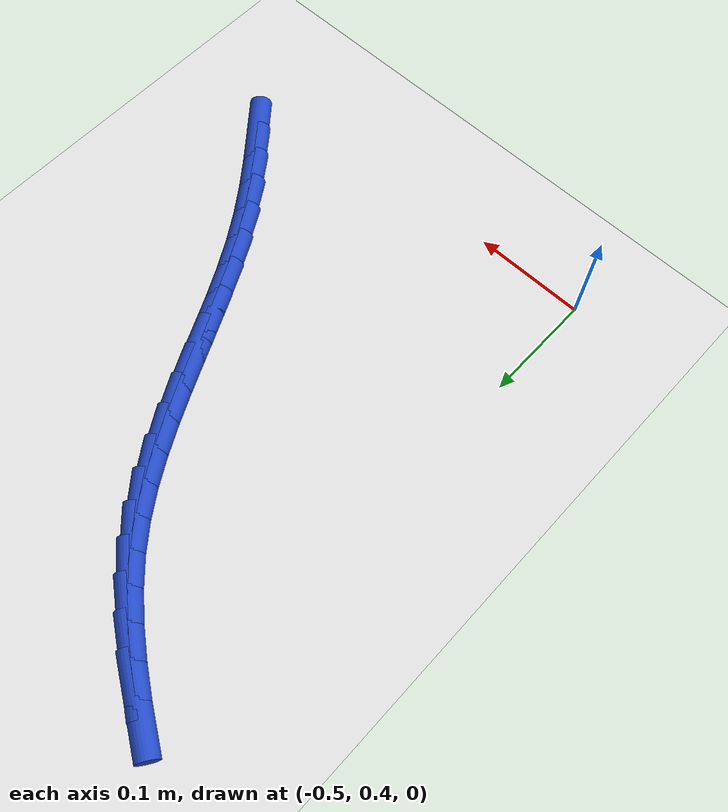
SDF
<sdf version="1.6">
 <world name="default">
  <model name="ground_plane">
   <static>1</static>
   <link name="link">
    <collision name="collision">
     <geometry><plane><normal>0 0 1</normal><size>100 100</size></plane></geometry>
     <surface><friction><ode><mu>100</mu><mu2>50</mu2></ode></friction></surface>
    </collision>
    <visual name="visual">
     <cast_shadows>0</cast_shadows>
     <geometry><plane><normal>0 0 1</normal><size>100 100</size></plane></geometry>
     <material>
      <script><uri>file://media/materials/scripts/gazebo.material</uri><name>Gazebo/WhiteGlow</name></script>
     </material>
    </visual>
   </link>
  </model>
  <model name="line">
   <link name="link_18">
    <pose>-0.1799338295573275 0.46100271826824607 0.01 0 1.57 -0.8775200405199837</pose>
    <collision name="collision">
     <geometry><cylinder><radius>0.01</radius><length>0.08</length></cylinder></geometry>
    </collision>
    <visual name="visual">
     <material>
      <script><name>Gazebo/Blue</name><uri>file://media/materials/scripts/gazebo.material</uri></script>
     </material>
     <geometry><cylinder><radius>0.01</radius><length>0.08</length></cylinder></geometry>
    </visual>
   </link>
   <link name="link_19">
    <pose>-0.1985180115336771 0.4833701477216604 0.01 0 1.57 -0.9076043102871109</pose>
    <collision name="collision">
     <geometry><cylinder><radius>0.01</radius><length>0.08</length></cylinder></geometry>
    </collision>
    <visual name="visual">
     <material>
      <script><name>Gazebo/Blue</name><uri>file://media/materials/scripts/gazebo.material</uri></script>
     </material>
     <geometry><cylinder><radius>0.01</radius><length>0.08</length></cylinder></geometry>
    </visual>
   </link>
   <link name="link_20">
    <pose>-0.21641313898775894 0.5062764291059282 0.01 0 1.57 -0.9494937242142367</pose>
    <collision name="collision">
     <geometry><cylinder><radius>0.01</radius><length>0.08</length></cylinder></geometry>
    </collision>
    <visual name="visual">
     <material>
      <script><name>Gazebo/Blue</name><uri>file://media/materials/scripts/gazebo.material</uri></script>
     </material>
     <geometry><cylinder><radius>0.01</radius><length>0.08</length></cylinder></geometry>
    </visual>
   </link>
   <link name="link_21">
    <pose>-0.2333200111365732 0.5298934251563915 0.01 0 1.57 -1.0025591956574016</pose>
    <collision name="collision">
     <geometry><cylinder><radius>0.01</radius><length>0.08</length></cylinder></geometry>
    </collision>
    <visual name="visual">
     <material>
      <script><name>Gazebo/Blue</name><uri>file://media/materials/scripts/gazebo.material</uri></script>
     </material>
     <geometry><cylinder><radius>0.01</radius><length>0.08</length></cylinder></geometry>
    </visual>
   </link>
   <link name="link_22">
    <pose>-0.24895544499840927 0.5543817886077085 0.01 0 1.57 -1.0536971307739194</pose>
    <collision name="collision">
     <geometry><cylinder><radius>0.01</radius><length>0.08</length></cylinder></geometry>
    </collision>
    <visual name="visual">
     <material>
      <script><name>Gazebo/Blue</name><uri>file://media/materials/scripts/gazebo.material</uri></script>
     </material>
     <geometry><cylinder><radius>0.01</radius><length>0.08</length></cylinder></geometry>
    </visual>
   </link>
   <link name="link_23">
    <pose>-0.26334601776941585 0.5796853876469604 0.01 0 1.57 -1.0912162326517247</pose>
    <collision name="collision">
     <geometry><cylinder><radius>0.01</radius><length>0.08</length></cylinder></geometry>
    </collision>
    <visual name="visual">
     <material>
      <script><name>Gazebo/Blue</name><uri>file://media/materials/scripts/gazebo.material</uri></script>
     </material>
     <geometry><cylinder><radius>0.01</radius><length>0.08</length></cylinder></geometry>
    </visual>
   </link>
   <link name="link_24">
    <pose>-0.27679861239916026 0.6055519194867726 0.01 0 1.57 -1.1149260319576053</pose>
    <collision name="collision">
     <geometry><cylinder><radius>0.01</radius><length>0.08</length></cylinder></geometry>
    </collision>
    <visual name="visual">
     <material>
      <script><name>Gazebo/Blue</name><uri>file://media/materials/scripts/gazebo.material</uri></script>
     </material>
     <geometry><cylinder><radius>0.01</radius><length>0.08</length></cylinder></geometry>
    </visual>
   </link>
   <link name="link_25">
    <pose>-0.2896302203112472 0.6317220069605334 0.01 0 1.57 -1.1249902588702205</pose>
    <collision name="collision">
     <geometry><cylinder><radius>0.01</radius><length>0.08</length></cylinder></geometry>
    </collision>
    <visual name="visual">
     <material>
      <script><name>Gazebo/Blue</name><uri>file://media/materials/scripts/gazebo.material</uri></script>
     </material>
     <geometry><cylinder><radius>0.01</radius><length>0.08</length></cylinder></geometry>
    </visual>
   </link>
   <link name="link_26">
    <pose>-0.30215783292928067 0.657936272901631 0.01 0 1.57 -1.1213694451881586</pose>
    <collision name="collision">
     <geometry><cylinder><radius>0.01</radius><length>0.08</length></cylinder></geometry>
    </collision>
    <visual name="visual">
     <material>
      <script><name>Gazebo/Blue</name><uri>file://media/materials/scripts/gazebo.material</uri></script>
     </material>
     <geometry><cylinder><radius>0.01</radius><length>0.08</length></cylinder></geometry>
    </visual>
   </link>
   <link name="link_27">
    <pose>-0.3146984416768654 0.683935340143454 0.01 0 1.57 -1.1037585140640633</pose>
    <collision name="collision">
     <geometry><cylinder><radius>0.01</radius><length>0.08</length></cylinder></geometry>
    </collision>
    <visual name="visual">
     <material>
      <script><name>Gazebo/Blue</name><uri>file://media/materials/scripts/gazebo.material</uri></script>
     </material>
     <geometry><cylinder><radius>0.01</radius><length>0.08</length></cylinder></geometry>
    </visual>
   </link>
   <link name="link_28">
    <pose>-0.3275690379776056 0.7094598315193907 0.01 0 1.57 -1.0715906503778565</pose>
    <collision name="collision">
     <geometry><cylinder><radius>0.01</radius><length>0.08</length></cylinder></geometry>
    </collision>
    <visual name="visual">
     <material>
      <script><name>Gazebo/Blue</name><uri>file://media/materials/scripts/gazebo.material</uri></script>
     </material>
     <geometry><cylinder><radius>0.01</radius><length>0.08</length></cylinder></geometry>
    </visual>
   </link>
   <link name="link_29">
    <pose>-0.3410866132551055 0.7342503698628288 0.01 0 1.57 -1.0241212920625875</pose>
    <collision name="collision">
     <geometry><cylinder><radius>0.01</radius><length>0.08</length></cylinder></geometry>
    </collision>
    <visual name="visual">
     <material>
      <script><name>Gazebo/Blue</name><uri>file://media/materials/scripts/gazebo.material</uri></script>
     </material>
     <geometry><cylinder><radius>0.01</radius><length>0.08</length></cylinder></geometry>
    </visual>
   </link>
   <link name="link_30">
    <pose>-0.3555681589329697 0.7580475780071572 0.01 0 1.57 -0.9606255741254276</pose>
    <collision name="collision">
     <geometry><cylinder><radius>0.01</radius><length>0.08</length></cylinder></geometry>
    </collision>
    <visual name="visual">
     <material>
      <script><name>Gazebo/Blue</name><uri>file://media/materials/scripts/gazebo.material</uri></script>
     </material>
     <geometry><cylinder><radius>0.01</radius><length>0.08</length></cylinder></geometry>
    </visual>
   </link>
   <link name="link_31">
    <pose>-0.3713306664348027 0.7805920787857641 0.01 0 1.57 -0.880944965859874</pose>
    <collision name="collision">
     <geometry><cylinder><radius>0.01</radius><length>0.08</length></cylinder></geometry>
    </collision>
    <visual name="visual">
     <material>
      <script><name>Gazebo/Blue</name><uri>file://media/materials/scripts/gazebo.material</uri></script>
     </material>
     <geometry><cylinder><radius>0.01</radius><length>0.08</length></cylinder></geometry>
    </visual>
   </link>
   <link name="link_32">
    <pose>-0.3886872609580348 0.8016281760271757 0.01 0 1.57 -0.7956933365458116</pose>
    <collision name="collision">
     <geometry><cylinder><radius>0.01</radius><length>0.08</length></cylinder></geometry>
    </collision>
    <visual name="visual">
     <material>
      <script><name>Gazebo/Blue</name><uri>file://media/materials/scripts/gazebo.material</uri></script>
     </material>
     <geometry><cylinder><radius>0.01</radius><length>0.08</length></cylinder></geometry>
    </visual>
   </link>
   <link name="link_33">
    <pose>-0.40775207182667306 0.821089635533862 0.01 0 1.57 -0.7209084457540363</pose>
    <collision name="collision">
     <geometry><cylinder><radius>0.01</radius><length>0.08</length></cylinder></geometry>
    </collision>
    <visual name="visual">
     <material>
      <script><name>Gazebo/Blue</name><uri>file://media/materials/scripts/gazebo.material</uri></script>
     </material>
     <geometry><cylinder><radius>0.01</radius><length>0.08</length></cylinder></geometry>
    </visual>
   </link>
   <link name="link_34">
    <pose>-0.4283483857234254 0.8391871314681452 0.01 0 1.57 -0.6585102063815033</pose>
    <collision name="collision">
     <geometry><cylinder><radius>0.01</radius><length>0.08</length></cylinder></geometry>
    </collision>
    <visual name="visual">
     <material>
      <script><name>Gazebo/Blue</name><uri>file://media/materials/scripts/gazebo.material</uri></script>
     </material>
     <geometry><cylinder><radius>0.01</radius><length>0.08</length></cylinder></geometry>
    </visual>
   </link>
   <link name="link_35">
    <pose>-0.45027642037944005 0.8561533017096057 0.01 0 1.57 -0.6085544483917543</pose>
    <collision name="collision">
     <geometry><cylinder><radius>0.01</radius><length>0.08</length></cylinder></geometry>
    </collision>
    <visual name="visual">
     <material>
      <script><name>Gazebo/Blue</name><uri>file://media/materials/scripts/gazebo.material</uri></script>
     </material>
     <geometry><cylinder><radius>0.01</radius><length>0.08</length></cylinder></geometry>
    </visual>
   </link>
   <link name="link_36">
    <pose>-0.47333639352586554 0.8722207841378238 0.01 0 1.57 -0.5706860413022776</pose>
    <collision name="collision">
     <geometry><cylinder><radius>0.01</radius><length>0.08</length></cylinder></geometry>
    </collision>
    <visual name="visual">
     <material>
      <script><name>Gazebo/Blue</name><uri>file://media/materials/scripts/gazebo.material</uri></script>
     </material>
     <geometry><cylinder><radius>0.01</radius><length>0.08</length></cylinder></geometry>
    </visual>
   </link>
  </model>
 </world>
</sdf>
